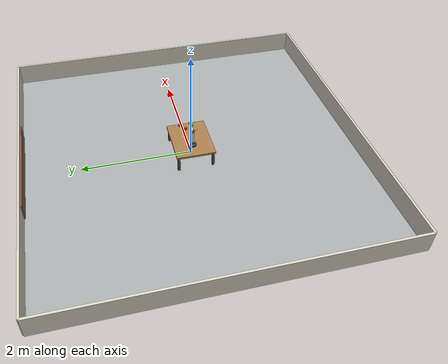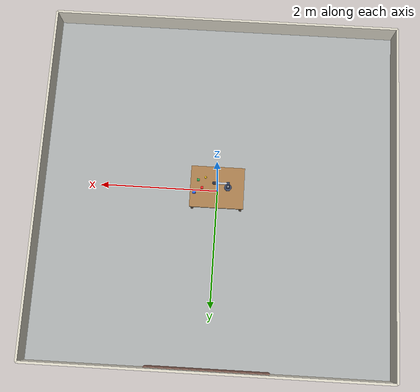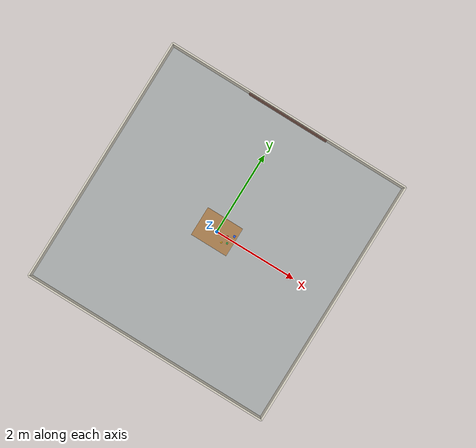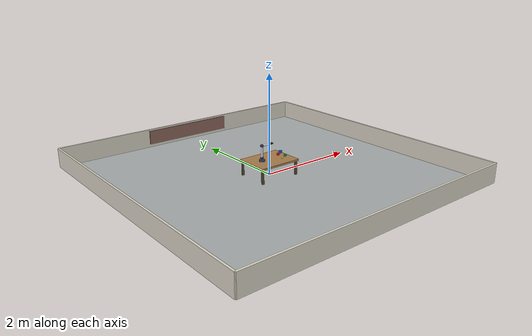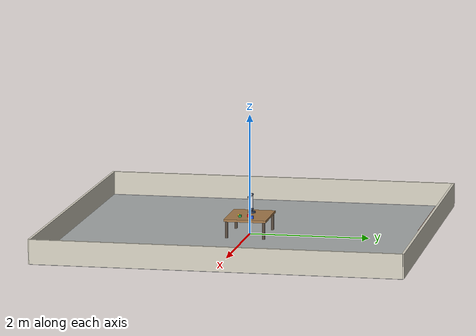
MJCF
<mujoco model="kornia_arm_table">
  <compiler angle="radian" autolimits="true"/>
  <option timestep="0.002"/>

  <asset>
    <texture name="floor" type="2d" builtin="checker" width="512" height="512" rgb1=".78 .78 .74" rgb2=".55 .58 .62" mark="edge" markrgb=".35 .35 .35"/>
    <material name="floor" texture="floor" texrepeat="12 12" texuniform="true" reflectance=".1"/>
    <texture name="wall" type="2d" builtin="flat" width="512" height="512" rgb1=".86 .84 .78" mark="random" random=".15" markrgb=".45 .42 .38"/>
    <material name="wall" texture="wall" texrepeat="8 1"/>
    <texture name="poster" type="2d" builtin="checker" width="256" height="256" rgb1=".95 .55 .15" rgb2=".15 .25 .55" mark="cross" markrgb="1 1 1"/>
    <material name="poster" texture="poster" texrepeat="3 2"/>
    <texture name="wood" type="2d" builtin="gradient" width="128" height="128" rgb1=".72 .55 .35" rgb2=".6 .43 .25" mark="edge" markrgb=".45 .3 .15"/>
    <material name="wood" texture="wood" texrepeat="3 2"/>
  </asset>

  <default>
    <joint damping=".8" armature=".02"/>
    <default class="link">
      <geom type="capsule" size=".018" rgba=".86 .87 .9 1"/>
    </default>
    <default class="hinge">
      <geom type="cylinder" size=".026 .022" rgba=".22 .27 .38 1" euler="1.5708 0 0" contype="0" conaffinity="0"/>
    </default>
    <default class="wallgeom">
      <geom type="box" material="wall"/>
    </default>
    <default class="block">
      <geom type="box" size=".02 .02 .02" mass=".05"/>
    </default>
  </default>

  <worldbody>
    <light pos="0 0 3" dir="0 0 -1" diffuse=".8 .8 .8" specular=".2 .2 .2" castshadow="true"/>
    <geom name="floor" type="plane" size="3 3 .05" material="floor"/>
    <geom name="wall_n" class="wallgeom" pos="0 3 .2" size="3 .02 .2"/>
    <geom name="wall_s" class="wallgeom" pos="0 -3 .2" size="3 .02 .2"/>
    <geom name="wall_e" class="wallgeom" pos="3 0 .2" size=".02 3 .2"/>
    <geom name="wall_w" class="wallgeom" pos="-3 0 .2" size=".02 3 .2"/>
    <geom name="poster" type="box" pos="0 2.96 .22" size="1 .01 .15" material="poster"/>

    <body name="table" pos="0 0 .3">
      <geom name="top" type="box" size=".45 .35 .02" material="wood"/>
      <geom type="box" pos=".41 .31 -.16" size=".02 .02 .14" rgba=".35 .3 .25 1"/>
      <geom type="box" pos="-.41 .31 -.16" size=".02 .02 .14" rgba=".35 .3 .25 1"/>
      <geom type="box" pos=".41 -.31 -.16" size=".02 .02 .14" rgba=".35 .3 .25 1"/>
      <geom type="box" pos="-.41 -.31 -.16" size=".02 .02 .14" rgba=".35 .3 .25 1"/>
    </body>

    <body name="base" pos="-.18 0 .335">
      <geom type="cylinder" size=".06 .015" rgba=".22 .27 .38 1"/>
      <body name="shoulder" pos="0 0 .045">
        <joint name="yaw" axis="0 0 1" range="-2.6 2.6"/>
        <geom class="hinge"/>
        <body name="link1">
          <joint name="shoulder" axis="0 1 0" range="-1.3 1.3"/>
          <geom class="link" fromto="0 0 0 0 0 .25"/>
          <body name="link2" pos="0 0 .25">
            <joint name="elbow" axis="0 1 0" range="-1.6 1.6"/>
            <geom class="hinge"/>
            <geom class="link" fromto="0 0 0 .18 0 0"/>
            <body name="wrist" pos=".18 0 0">
              <joint name="wrist" axis="0 1 0" range="-1.7 1.7"/>
              <geom class="hinge" size=".02 .018"/>
              <geom type="box" pos=".045 0 0" size=".03 .02 .013" rgba=".18 .18 .22 1"/>
              <geom type="cylinder" pos=".077 0 0" size=".009 .003" rgba=".05 .05 .08 1" euler="0 1.5708 0"/>
              <camera name="wrist" pos=".095 0 0" xyaxes="0 -1 0 0 0 1" fovy="70"/>
            </body>
          </body>
        </body>
      </body>
    </body>

    <body name="red" pos=".25 .03 .36"><freejoint/><geom class="block" rgba=".9 .12 .12 1"/></body>
    <body name="green" pos=".32 -.1 .36"><freejoint/><geom class="block" rgba=".15 .65 .3 1"/></body>
    <body name="blue" pos=".38 .11 .36"><freejoint/><geom class="block" size=".025 .025 .025" rgba=".15 .35 .9 1"/></body>
    <body name="ball" pos=".2 -.15 .35"><freejoint/><geom type="sphere" size=".02" rgba=".95 .75 .1 1" mass=".03"/></body>
  </worldbody>

  <actuator>
    <position name="yaw" joint="yaw" kp="25" ctrlrange="-2.6 2.6"/>
    <position name="shoulder" joint="shoulder" kp="45" ctrlrange="-1.3 1.3"/>
    <position name="elbow" joint="elbow" kp="30" ctrlrange="-1.6 1.6"/>
    <position name="wrist" joint="wrist" kp="15" ctrlrange="-1.7 1.7"/>
  </actuator>
</mujoco>
